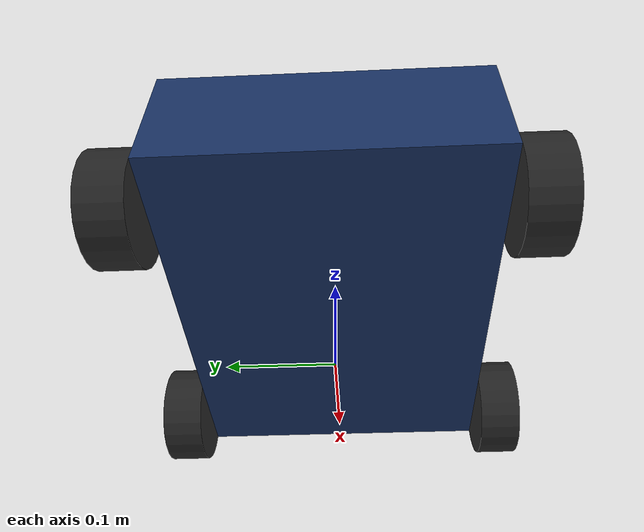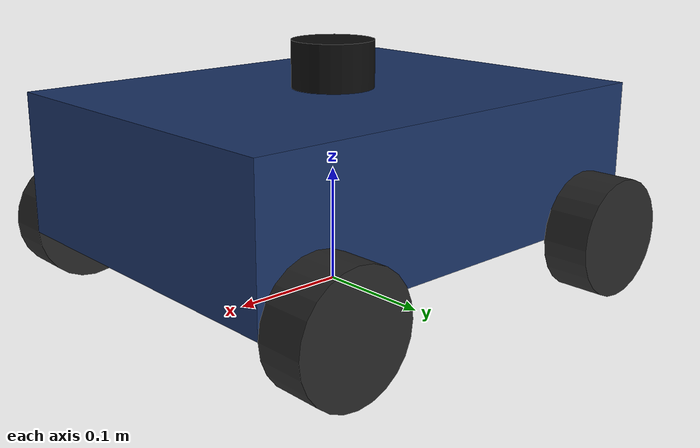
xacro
<?xml version="1.0"?>
<robot xmlns:xacro="http://www.ros.org/wiki/xacro" name="mecanum_robot">

  <!-- Include modular xacro files -->
  <xacro:include filename="$(find mecanum_description)/urdf/materials.xacro"/>
  <xacro:include filename="$(find mecanum_description)/urdf/properties.xacro"/>
  <xacro:include filename="$(find mecanum_description)/urdf/chassis.xacro"/>
  <xacro:include filename="$(find mecanum_description)/urdf/mecanum_wheel.xacro"/>
  <xacro:include filename="$(find mecanum_description)/urdf/lidar.xacro"/>
  <xacro:include filename="$(find mecanum_description)/urdf/gazebo.xacro"/>

  <!-- Base footprint (ground plane reference) -->
  <link name="base_footprint"/>

  <joint name="base_footprint_joint" type="fixed">
    <parent link="base_footprint"/>
    <child link="base_link"/>
    <origin xyz="0 0 ${wheel_radius}" rpy="0 0 0"/>
  </joint>

  <!-- Chassis -->
  <xacro:chassis/>

  <!-- Mecanum Wheels -->
  <!-- Front Left -->
  <xacro:mecanum_wheel name="front_left_wheel"
    parent="base_link"
    x="${chassis_length/2 - wheel_x_offset}"
    y="${chassis_width/2 + wheel_y_offset}"
    z="0"
    roller_angle="${pi/4}"/>

  <!-- Front Right -->
  <xacro:mecanum_wheel name="front_right_wheel"
    parent="base_link"
    x="${chassis_length/2 - wheel_x_offset}"
    y="${-(chassis_width/2 + wheel_y_offset)}"
    z="0"
    roller_angle="${-pi/4}"/>

  <!-- Rear Left -->
  <xacro:mecanum_wheel name="rear_left_wheel"
    parent="base_link"
    x="${-(chassis_length/2 - wheel_x_offset)}"
    y="${chassis_width/2 + wheel_y_offset}"
    z="0"
    roller_angle="${-pi/4}"/>

  <!-- Rear Right -->
  <xacro:mecanum_wheel name="rear_right_wheel"
    parent="base_link"
    x="${-(chassis_length/2 - wheel_x_offset)}"
    y="${-(chassis_width/2 + wheel_y_offset)}"
    z="0"
    roller_angle="${pi/4}"/>

  <!-- LiDAR sensor -->
  <xacro:lidar_sensor parent="base_link"/>

</robot>

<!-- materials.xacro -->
<robot xmlns:xacro="http://www.ros.org/wiki/xacro">

  <!-- Material Definitions -->
  <material name="chassis_blue">
    <color rgba="0.1 0.2 0.4 1.0"/>
  </material>

  <material name="wheel_dark">
    <color rgba="0.15 0.15 0.15 1.0"/>
  </material>

  <material name="roller_gray">
    <color rgba="0.5 0.5 0.5 1.0"/>
  </material>

  <material name="lidar_black">
    <color rgba="0.05 0.05 0.05 1.0"/>
  </material>

  <material name="white">
    <color rgba="1.0 1.0 1.0 1.0"/>
  </material>

  <material name="orange">
    <color rgba="1.0 0.5 0.0 1.0"/>
  </material>

</robot>

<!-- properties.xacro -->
<robot xmlns:xacro="http://www.ros.org/wiki/xacro">

  <!-- Chassis Properties -->
  <xacro:property name="chassis_length" value="0.40"/>
  <xacro:property name="chassis_width" value="0.30"/>
  <xacro:property name="chassis_height" value="0.12"/>
  <xacro:property name="chassis_mass" value="5.0"/>

  <!-- Wheel Properties -->
  <xacro:property name="wheel_radius" value="0.05"/>
  <xacro:property name="wheel_width" value="0.04"/>
  <xacro:property name="wheel_mass" value="0.5"/>
  <xacro:property name="wheel_x_offset" value="0.05"/>
  <xacro:property name="wheel_y_offset" value="0.02"/>

  <!-- LiDAR Properties -->
  <xacro:property name="lidar_radius" value="0.035"/>
  <xacro:property name="lidar_height" value="0.04"/>
  <xacro:property name="lidar_mass" value="0.2"/>
  <xacro:property name="lidar_z_offset" value="${chassis_height/2 + lidar_height/2}"/>

  <!-- Inertia Macros -->
  <xacro:macro name="box_inertia" params="m l w h">
    <inertial>
      <mass value="${m}"/>
      <inertia ixx="${(m/12)*(w*w+h*h)}" ixy="0" ixz="0"
               iyy="${(m/12)*(l*l+h*h)}" iyz="0"
               izz="${(m/12)*(l*l+w*w)}"/>
    </inertial>
  </xacro:macro>

  <xacro:macro name="cylinder_inertia" params="m r h">
    <inertial>
      <mass value="${m}"/>
      <inertia ixx="${(m/12)*(3*r*r+h*h)}" ixy="0" ixz="0"
               iyy="${(m/12)*(3*r*r+h*h)}" iyz="0"
               izz="${(m/2)*r*r}"/>
    </inertial>
  </xacro:macro>

</robot>

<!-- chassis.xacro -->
<robot xmlns:xacro="http://www.ros.org/wiki/xacro">

  <xacro:macro name="chassis">
    <!-- Base Link (Chassis) -->
    <link name="base_link">
      <visual>
        <geometry>
          <box size="${chassis_length} ${chassis_width} ${chassis_height}"/>
        </geometry>
        <origin xyz="0 0 ${chassis_height/2}" rpy="0 0 0"/>
        <material name="chassis_blue"/>
      </visual>

      <collision>
        <geometry>
          <box size="${chassis_length} ${chassis_width} ${chassis_height}"/>
        </geometry>
        <origin xyz="0 0 ${chassis_height/2}" rpy="0 0 0"/>
      </collision>

      <xacro:box_inertia m="${chassis_mass}" l="${chassis_length}" w="${chassis_width}" h="${chassis_height}"/>
    </link>
  </xacro:macro>

</robot>

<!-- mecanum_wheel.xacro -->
<robot xmlns:xacro="http://www.ros.org/wiki/xacro">

  <xacro:macro name="mecanum_wheel" params="name parent x y z roller_angle">

    <!-- Wheel Link -->
    <link name="${name}">
      <visual>
        <geometry>
          <cylinder radius="${wheel_radius}" length="${wheel_width}"/>
        </geometry>
        <origin xyz="0 0 0" rpy="${pi/2} 0 0"/>
        <material name="wheel_dark"/>
      </visual>

      <collision>
        <geometry>
          <cylinder radius="${wheel_radius}" length="${wheel_width}"/>
        </geometry>
        <origin xyz="0 0 0" rpy="${pi/2} 0 0"/>
      </collision>

      <xacro:cylinder_inertia m="${wheel_mass}" r="${wheel_radius}" h="${wheel_width}"/>
    </link>

    <!-- Wheel Joint -->
    <joint name="${name}_joint" type="continuous">
      <parent link="${parent}"/>
      <child link="${name}"/>
      <origin xyz="${x} ${y} ${z}" rpy="0 0 0"/>
      <axis xyz="0 1 0"/>
      <dynamics damping="0.1" friction="0.1"/>
    </joint>

  </xacro:macro>

</robot>

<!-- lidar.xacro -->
<robot xmlns:xacro="http://www.ros.org/wiki/xacro">

  <xacro:macro name="lidar_sensor" params="parent">

    <!-- LiDAR Base Mount -->
    <link name="lidar_link">
      <visual>
        <geometry>
          <cylinder radius="${lidar_radius}" length="${lidar_height}"/>
        </geometry>
        <origin xyz="0 0 0" rpy="0 0 0"/>
        <material name="lidar_black"/>
      </visual>

      <collision>
        <geometry>
          <cylinder radius="${lidar_radius}" length="${lidar_height}"/>
        </geometry>
        <origin xyz="0 0 0" rpy="0 0 0"/>
      </collision>

      <xacro:cylinder_inertia m="${lidar_mass}" r="${lidar_radius}" h="${lidar_height}"/>
    </link>

    <!-- LiDAR Joint (fixed to chassis top center) -->
    <joint name="lidar_joint" type="fixed">
      <parent link="${parent}"/>
      <child link="lidar_link"/>
      <origin xyz="0 0 ${chassis_height + lidar_height/2}" rpy="0 0 0"/>
    </joint>

    <!-- LiDAR Scan Frame -->
    <link name="laser_frame"/>

    <joint name="laser_frame_joint" type="fixed">
      <parent link="lidar_link"/>
      <child link="laser_frame"/>
      <origin xyz="0 0 ${lidar_height/2}" rpy="0 0 0"/>
    </joint>

  </xacro:macro>

</robot>
